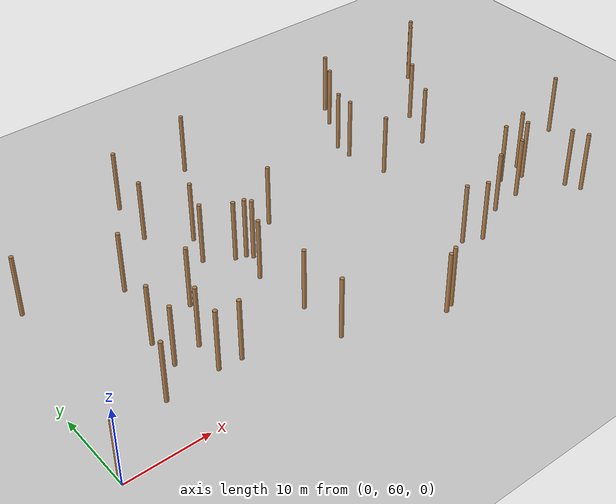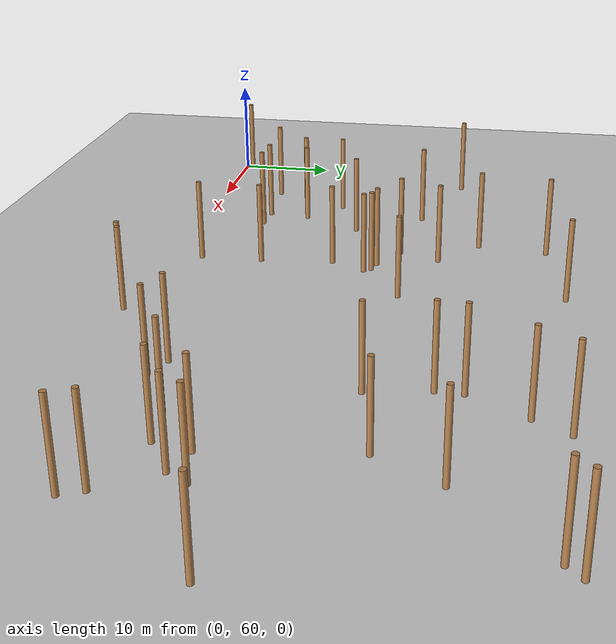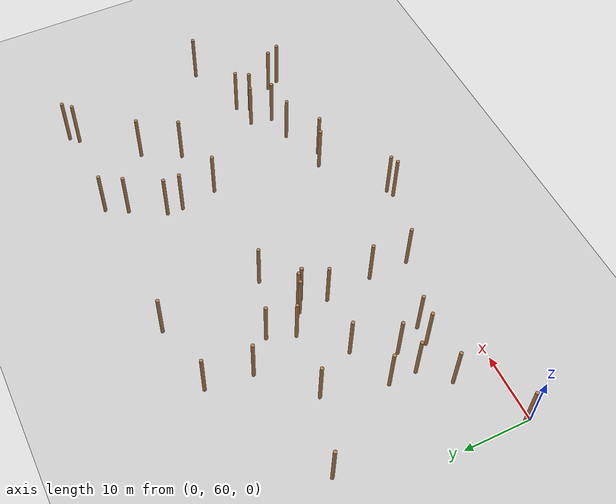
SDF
<sdf version="1.5">
 <world name="padure_tactica">
  <include><uri>model://sun</uri></include>
  <include><uri>model://ground_plane</uri></include>
  <model name="tree_3">
   <static>true</static>
   <pose>61.05 68.27 4.0 0 0 0</pose>
   <link name="link">
    <collision name="collision">
     <geometry><cylinder><radius>0.25</radius><length>8.0</length></cylinder></geometry>
    </collision>
    <visual name="visual">
     <geometry><cylinder><radius>0.25</radius><length>8.0</length></cylinder></geometry>
     <material>
      <script><uri>file://media/materials/scripts/gazebo.material</uri><name>Gazebo/Wood</name></script>
     </material>
    </visual>
   </link>
  </model>
  <model name="tree_17">
   <static>true</static>
   <pose>3.98 86.76 4.0 0 0 0</pose>
   <link name="link">
    <collision name="collision">
     <geometry><cylinder><radius>0.25</radius><length>8.0</length></cylinder></geometry>
    </collision>
    <visual name="visual">
     <geometry><cylinder><radius>0.25</radius><length>8.0</length></cylinder></geometry>
     <material>
      <script><uri>file://media/materials/scripts/gazebo.material</uri><name>Gazebo/Wood</name></script>
     </material>
    </visual>
   </link>
  </model>
  <model name="tree_68">
   <static>true</static>
   <pose>53.68 95.04 4.0 0 0 0</pose>
   <link name="link">
    <collision name="collision">
     <geometry><cylinder><radius>0.25</radius><length>8.0</length></cylinder></geometry>
    </collision>
    <visual name="visual">
     <geometry><cylinder><radius>0.25</radius><length>8.0</length></cylinder></geometry>
     <material>
      <script><uri>file://media/materials/scripts/gazebo.material</uri><name>Gazebo/Wood</name></script>
     </material>
    </visual>
   </link>
  </model>
  <model name="tree_84">
   <static>true</static>
   <pose>70.87 98.27 4.0 0 0 0</pose>
   <link name="link">
    <collision name="collision">
     <geometry><cylinder><radius>0.25</radius><length>8.0</length></cylinder></geometry>
    </collision>
    <visual name="visual">
     <geometry><cylinder><radius>0.25</radius><length>8.0</length></cylinder></geometry>
     <material>
      <script><uri>file://media/materials/scripts/gazebo.material</uri><name>Gazebo/Wood</name></script>
     </material>
    </visual>
   </link>
  </model>
  <model name="tree_122">
   <static>true</static>
   <pose>12.30 74.06 4.0 0 0 0</pose>
   <link name="link">
    <collision name="collision">
     <geometry><cylinder><radius>0.25</radius><length>8.0</length></cylinder></geometry>
    </collision>
    <visual name="visual">
     <geometry><cylinder><radius>0.25</radius><length>8.0</length></cylinder></geometry>
     <material>
      <script><uri>file://media/materials/scripts/gazebo.material</uri><name>Gazebo/Wood</name></script>
     </material>
    </visual>
   </link>
  </model>
  <model name="tree_138">
   <static>true</static>
   <pose>28.56 79.54 4.0 0 0 0</pose>
   <link name="link">
    <collision name="collision">
     <geometry><cylinder><radius>0.25</radius><length>8.0</length></cylinder></geometry>
    </collision>
    <visual name="visual">
     <geometry><cylinder><radius>0.25</radius><length>8.0</length></cylinder></geometry>
     <material>
      <script><uri>file://media/materials/scripts/gazebo.material</uri><name>Gazebo/Wood</name></script>
     </material>
    </visual>
   </link>
  </model>
  <model name="tree_152">
   <static>true</static>
   <pose>50.90 89.97 4.0 0 0 0</pose>
   <link name="link">
    <collision name="collision">
     <geometry><cylinder><radius>0.25</radius><length>8.0</length></cylinder></geometry>
    </collision>
    <visual name="visual">
     <geometry><cylinder><radius>0.25</radius><length>8.0</length></cylinder></geometry>
     <material>
      <script><uri>file://media/materials/scripts/gazebo.material</uri><name>Gazebo/Wood</name></script>
     </material>
    </visual>
   </link>
  </model>
  <model name="tree_161">
   <static>true</static>
   <pose>27.30 79.90 4.0 0 0 0</pose>
   <link name="link">
    <collision name="collision">
     <geometry><cylinder><radius>0.25</radius><length>8.0</length></cylinder></geometry>
    </collision>
    <visual name="visual">
     <geometry><cylinder><radius>0.25</radius><length>8.0</length></cylinder></geometry>
     <material>
      <script><uri>file://media/materials/scripts/gazebo.material</uri><name>Gazebo/Wood</name></script>
     </material>
    </visual>
   </link>
  </model>
  <model name="tree_195">
   <static>true</static>
   <pose>22.06 96.37 4.0 0 0 0</pose>
   <link name="link">
    <collision name="collision">
     <geometry><cylinder><radius>0.25</radius><length>8.0</length></cylinder></geometry>
    </collision>
    <visual name="visual">
     <geometry><cylinder><radius>0.25</radius><length>8.0</length></cylinder></geometry>
     <material>
      <script><uri>file://media/materials/scripts/gazebo.material</uri><name>Gazebo/Wood</name></script>
     </material>
    </visual>
   </link>
  </model>
  <model name="tree_224">
   <static>true</static>
   <pose>67.33 65.92 4.0 0 0 0</pose>
   <link name="link">
    <collision name="collision">
     <geometry><cylinder><radius>0.25</radius><length>8.0</length></cylinder></geometry>
    </collision>
    <visual name="visual">
     <geometry><cylinder><radius>0.25</radius><length>8.0</length></cylinder></geometry>
     <material>
      <script><uri>file://media/materials/scripts/gazebo.material</uri><name>Gazebo/Wood</name></script>
     </material>
    </visual>
   </link>
  </model>
  <model name="tree_226">
   <static>true</static>
   <pose>32.64 98.08 4.0 0 0 0</pose>
   <link name="link">
    <collision name="collision">
     <geometry><cylinder><radius>0.25</radius><length>8.0</length></cylinder></geometry>
    </collision>
    <visual name="visual">
     <geometry><cylinder><radius>0.25</radius><length>8.0</length></cylinder></geometry>
     <material>
      <script><uri>file://media/materials/scripts/gazebo.material</uri><name>Gazebo/Wood</name></script>
     </material>
    </visual>
   </link>
  </model>
  <model name="tree_230">
   <static>true</static>
   <pose>69.76 97.09 4.0 0 0 0</pose>
   <link name="link">
    <collision name="collision">
     <geometry><cylinder><radius>0.25</radius><length>8.0</length></cylinder></geometry>
    </collision>
    <visual name="visual">
     <geometry><cylinder><radius>0.25</radius><length>8.0</length></cylinder></geometry>
     <material>
      <script><uri>file://media/materials/scripts/gazebo.material</uri><name>Gazebo/Wood</name></script>
     </material>
    </visual>
   </link>
  </model>
  <model name="tree_242">
   <static>true</static>
   <pose>49.46 65.78 4.0 0 0 0</pose>
   <link name="link">
    <collision name="collision">
     <geometry><cylinder><radius>0.25</radius><length>8.0</length></cylinder></geometry>
    </collision>
    <visual name="visual">
     <geometry><cylinder><radius>0.25</radius><length>8.0</length></cylinder></geometry>
     <material>
      <script><uri>file://media/materials/scripts/gazebo.material</uri><name>Gazebo/Wood</name></script>
     </material>
    </visual>
   </link>
  </model>
  <model name="tree_286">
   <static>true</static>
   <pose>39.66 58.29 4.0 0 0 0</pose>
   <link name="link">
    <collision name="collision">
     <geometry><cylinder><radius>0.25</radius><length>8.0</length></cylinder></geometry>
    </collision>
    <visual name="visual">
     <geometry><cylinder><radius>0.25</radius><length>8.0</length></cylinder></geometry>
     <material>
      <script><uri>file://media/materials/scripts/gazebo.material</uri><name>Gazebo/Wood</name></script>
     </material>
    </visual>
   </link>
  </model>
  <model name="tree_382">
   <static>true</static>
   <pose>64.44 70.48 4.0 0 0 0</pose>
   <link name="link">
    <collision name="collision">
     <geometry><cylinder><radius>0.25</radius><length>8.0</length></cylinder></geometry>
    </collision>
    <visual name="visual">
     <geometry><cylinder><radius>0.25</radius><length>8.0</length></cylinder></geometry>
     <material>
      <script><uri>file://media/materials/scripts/gazebo.material</uri><name>Gazebo/Wood</name></script>
     </material>
    </visual>
   </link>
  </model>
  <model name="tree_406">
   <static>true</static>
   <pose>28.17 68.47 4.0 0 0 0</pose>
   <link name="link">
    <collision name="collision">
     <geometry><cylinder><radius>0.25</radius><length>8.0</length></cylinder></geometry>
    </collision>
    <visual name="visual">
     <geometry><cylinder><radius>0.25</radius><length>8.0</length></cylinder></geometry>
     <material>
      <script><uri>file://media/materials/scripts/gazebo.material</uri><name>Gazebo/Wood</name></script>
     </material>
    </visual>
   </link>
  </model>
  <model name="tree_424">
   <static>true</static>
   <pose>18.79 76.56 4.0 0 0 0</pose>
   <link name="link">
    <collision name="collision">
     <geometry><cylinder><radius>0.25</radius><length>8.0</length></cylinder></geometry>
    </collision>
    <visual name="visual">
     <geometry><cylinder><radius>0.25</radius><length>8.0</length></cylinder></geometry>
     <material>
      <script><uri>file://media/materials/scripts/gazebo.material</uri><name>Gazebo/Wood</name></script>
     </material>
    </visual>
   </link>
  </model>
  <model name="tree_428">
   <static>true</static>
   <pose>8.98 66.28 4.0 0 0 0</pose>
   <link name="link">
    <collision name="collision">
     <geometry><cylinder><radius>0.25</radius><length>8.0</length></cylinder></geometry>
    </collision>
    <visual name="visual">
     <geometry><cylinder><radius>0.25</radius><length>8.0</length></cylinder></geometry>
     <material>
      <script><uri>file://media/materials/scripts/gazebo.material</uri><name>Gazebo/Wood</name></script>
     </material>
    </visual>
   </link>
  </model>
  <model name="tree_462">
   <static>true</static>
   <pose>12.42 69.99 4.0 0 0 0</pose>
   <link name="link">
    <collision name="collision">
     <geometry><cylinder><radius>0.25</radius><length>8.0</length></cylinder></geometry>
    </collision>
    <visual name="visual">
     <geometry><cylinder><radius>0.25</radius><length>8.0</length></cylinder></geometry>
     <material>
      <script><uri>file://media/materials/scripts/gazebo.material</uri><name>Gazebo/Wood</name></script>
     </material>
    </visual>
   </link>
  </model>
  <model name="tree_488">
   <static>true</static>
   <pose>56.90 67.70 4.0 0 0 0</pose>
   <link name="link">
    <collision name="collision">
     <geometry><cylinder><radius>0.25</radius><length>8.0</length></cylinder></geometry>
    </collision>
    <visual name="visual">
     <geometry><cylinder><radius>0.25</radius><length>8.0</length></cylinder></geometry>
     <material>
      <script><uri>file://media/materials/scripts/gazebo.material</uri><name>Gazebo/Wood</name></script>
     </material>
    </visual>
   </link>
  </model>
  <model name="tree_504">
   <static>true</static>
   <pose>27.48 75.52 4.0 0 0 0</pose>
   <link name="link">
    <collision name="collision">
     <geometry><cylinder><radius>0.25</radius><length>8.0</length></cylinder></geometry>
    </collision>
    <visual name="visual">
     <geometry><cylinder><radius>0.25</radius><length>8.0</length></cylinder></geometry>
     <material>
      <script><uri>file://media/materials/scripts/gazebo.material</uri><name>Gazebo/Wood</name></script>
     </material>
    </visual>
   </link>
  </model>
  <model name="tree_510">
   <static>true</static>
   <pose>25.57 85.80 4.0 0 0 0</pose>
   <link name="link">
    <collision name="collision">
     <geometry><cylinder><radius>0.25</radius><length>8.0</length></cylinder></geometry>
    </collision>
    <visual name="visual">
     <geometry><cylinder><radius>0.25</radius><length>8.0</length></cylinder></geometry>
     <material>
      <script><uri>file://media/materials/scripts/gazebo.material</uri><name>Gazebo/Wood</name></script>
     </material>
    </visual>
   </link>
  </model>
  <model name="tree_570">
   <static>true</static>
   <pose>21.27 89.62 4.0 0 0 0</pose>
   <link name="link">
    <collision name="collision">
     <geometry><cylinder><radius>0.25</radius><length>8.0</length></cylinder></geometry>
    </collision>
    <visual name="visual">
     <geometry><cylinder><radius>0.25</radius><length>8.0</length></cylinder></geometry>
     <material>
      <script><uri>file://media/materials/scripts/gazebo.material</uri><name>Gazebo/Wood</name></script>
     </material>
    </visual>
   </link>
  </model>
  <model name="tree_596">
   <static>true</static>
   <pose>60.12 83.91 4.0 0 0 0</pose>
   <link name="link">
    <collision name="collision">
     <geometry><cylinder><radius>0.25</radius><length>8.0</length></cylinder></geometry>
    </collision>
    <visual name="visual">
     <geometry><cylinder><radius>0.25</radius><length>8.0</length></cylinder></geometry>
     <material>
      <script><uri>file://media/materials/scripts/gazebo.material</uri><name>Gazebo/Wood</name></script>
     </material>
    </visual>
   </link>
  </model>
  <model name="tree_600">
   <static>true</static>
   <pose>15.54 66.61 4.0 0 0 0</pose>
   <link name="link">
    <collision name="collision">
     <geometry><cylinder><radius>0.25</radius><length>8.0</length></cylinder></geometry>
    </collision>
    <visual name="visual">
     <geometry><cylinder><radius>0.25</radius><length>8.0</length></cylinder></geometry>
     <material>
      <script><uri>file://media/materials/scripts/gazebo.material</uri><name>Gazebo/Wood</name></script>
     </material>
    </visual>
   </link>
  </model>
  <model name="tree_633">
   <static>true</static>
   <pose>63.01 89.46 4.0 0 0 0</pose>
   <link name="link">
    <collision name="collision">
     <geometry><cylinder><radius>0.25</radius><length>8.0</length></cylinder></geometry>
    </collision>
    <visual name="visual">
     <geometry><cylinder><radius>0.25</radius><length>8.0</length></cylinder></geometry>
     <material>
      <script><uri>file://media/materials/scripts/gazebo.material</uri><name>Gazebo/Wood</name></script>
     </material>
    </visual>
   </link>
  </model>
  <model name="tree_636">
   <static>true</static>
   <pose>51.79 64.77 4.0 0 0 0</pose>
   <link name="link">
    <collision name="collision">
     <geometry><cylinder><radius>0.25</radius><length>8.0</length></cylinder></geometry>
    </collision>
    <visual name="visual">
     <geometry><cylinder><radius>0.25</radius><length>8.0</length></cylinder></geometry>
     <material>
      <script><uri>file://media/materials/scripts/gazebo.material</uri><name>Gazebo/Wood</name></script>
     </material>
    </visual>
   </link>
  </model>
  <model name="tree_674">
   <static>true</static>
   <pose>65.53 72.30 4.0 0 0 0</pose>
   <link name="link">
    <collision name="collision">
     <geometry><cylinder><radius>0.25</radius><length>8.0</length></cylinder></geometry>
    </collision>
    <visual name="visual">
     <geometry><cylinder><radius>0.25</radius><length>8.0</length></cylinder></geometry>
     <material>
      <script><uri>file://media/materials/scripts/gazebo.material</uri><name>Gazebo/Wood</name></script>
     </material>
    </visual>
   </link>
  </model>
  <model name="tree_707">
   <static>true</static>
   <pose>14.58 83.15 4.0 0 0 0</pose>
   <link name="link">
    <collision name="collision">
     <geometry><cylinder><radius>0.25</radius><length>8.0</length></cylinder></geometry>
    </collision>
    <visual name="visual">
     <geometry><cylinder><radius>0.25</radius><length>8.0</length></cylinder></geometry>
     <material>
      <script><uri>file://media/materials/scripts/gazebo.material</uri><name>Gazebo/Wood</name></script>
     </material>
    </visual>
   </link>
  </model>
  <model name="tree_750">
   <static>true</static>
   <pose>68.13 64.08 4.0 0 0 0</pose>
   <link name="link">
    <collision name="collision">
     <geometry><cylinder><radius>0.25</radius><length>8.0</length></cylinder></geometry>
    </collision>
    <visual name="visual">
     <geometry><cylinder><radius>0.25</radius><length>8.0</length></cylinder></geometry>
     <material>
      <script><uri>file://media/materials/scripts/gazebo.material</uri><name>Gazebo/Wood</name></script>
     </material>
    </visual>
   </link>
  </model>
  <model name="tree_862">
   <static>true</static>
   <pose>18.28 66.39 4.0 0 0 0</pose>
   <link name="link">
    <collision name="collision">
     <geometry><cylinder><radius>0.25</radius><length>8.0</length></cylinder></geometry>
    </collision>
    <visual name="visual">
     <geometry><cylinder><radius>0.25</radius><length>8.0</length></cylinder></geometry>
     <material>
      <script><uri>file://media/materials/scripts/gazebo.material</uri><name>Gazebo/Wood</name></script>
     </material>
    </visual>
   </link>
  </model>
  <model name="tree_870">
   <static>true</static>
   <pose>24.17 81.89 4.0 0 0 0</pose>
   <link name="link">
    <collision name="collision">
     <geometry><cylinder><radius>0.25</radius><length>8.0</length></cylinder></geometry>
    </collision>
    <visual name="visual">
     <geometry><cylinder><radius>0.25</radius><length>8.0</length></cylinder></geometry>
     <material>
      <script><uri>file://media/materials/scripts/gazebo.material</uri><name>Gazebo/Wood</name></script>
     </material>
    </visual>
   </link>
  </model>
  <model name="tree_925">
   <static>true</static>
   <pose>50.82 87.60 4.0 0 0 0</pose>
   <link name="link">
    <collision name="collision">
     <geometry><cylinder><radius>0.25</radius><length>8.0</length></cylinder></geometry>
    </collision>
    <visual name="visual">
     <geometry><cylinder><radius>0.25</radius><length>8.0</length></cylinder></geometry>
     <material>
      <script><uri>file://media/materials/scripts/gazebo.material</uri><name>Gazebo/Wood</name></script>
     </material>
    </visual>
   </link>
  </model>
  <model name="tree_943">
   <static>true</static>
   <pose>51.82 82.09 4.0 0 0 0</pose>
   <link name="link">
    <collision name="collision">
     <geometry><cylinder><radius>0.25</radius><length>8.0</length></cylinder></geometry>
    </collision>
    <visual name="visual">
     <geometry><cylinder><radius>0.25</radius><length>8.0</length></cylinder></geometry>
     <material>
      <script><uri>file://media/materials/scripts/gazebo.material</uri><name>Gazebo/Wood</name></script>
     </material>
    </visual>
   </link>
  </model>
  <model name="tree_952">
   <static>true</static>
   <pose>28.33 62.45 4.0 0 0 0</pose>
   <link name="link">
    <collision name="collision">
     <geometry><cylinder><radius>0.25</radius><length>8.0</length></cylinder></geometry>
    </collision>
    <visual name="visual">
     <geometry><cylinder><radius>0.25</radius><length>8.0</length></cylinder></geometry>
     <material>
      <script><uri>file://media/materials/scripts/gazebo.material</uri><name>Gazebo/Wood</name></script>
     </material>
    </visual>
   </link>
  </model>
  <model name="tree_957">
   <static>true</static>
   <pose>15.96 70.75 4.0 0 0 0</pose>
   <link name="link">
    <collision name="collision">
     <geometry><cylinder><radius>0.25</radius><length>8.0</length></cylinder></geometry>
    </collision>
    <visual name="visual">
     <geometry><cylinder><radius>0.25</radius><length>8.0</length></cylinder></geometry>
     <material>
      <script><uri>file://media/materials/scripts/gazebo.material</uri><name>Gazebo/Wood</name></script>
     </material>
    </visual>
   </link>
  </model>
  <model name="tree_967">
   <static>true</static>
   <pose>29.08 78.86 4.0 0 0 0</pose>
   <link name="link">
    <collision name="collision">
     <geometry><cylinder><radius>0.25</radius><length>8.0</length></cylinder></geometry>
    </collision>
    <visual name="visual">
     <geometry><cylinder><radius>0.25</radius><length>8.0</length></cylinder></geometry>
     <material>
      <script><uri>file://media/materials/scripts/gazebo.material</uri><name>Gazebo/Wood</name></script>
     </material>
    </visual>
   </link>
  </model>
  <model name="tree_997">
   <static>true</static>
   <pose>55.42 98.06 4.0 0 0 0</pose>
   <link name="link">
    <collision name="collision">
     <geometry><cylinder><radius>0.25</radius><length>8.0</length></cylinder></geometry>
    </collision>
    <visual name="visual">
     <geometry><cylinder><radius>0.25</radius><length>8.0</length></cylinder></geometry>
     <material>
      <script><uri>file://media/materials/scripts/gazebo.material</uri><name>Gazebo/Wood</name></script>
     </material>
    </visual>
   </link>
  </model>
  <model name="tree_1023">
   <static>true</static>
   <pose>40.76 58.75 4.0 0 0 0</pose>
   <link name="link">
    <collision name="collision">
     <geometry><cylinder><radius>0.25</radius><length>8.0</length></cylinder></geometry>
    </collision>
    <visual name="visual">
     <geometry><cylinder><radius>0.25</radius><length>8.0</length></cylinder></geometry>
     <material>
      <script><uri>file://media/materials/scripts/gazebo.material</uri><name>Gazebo/Wood</name></script>
     </material>
    </visual>
   </link>
  </model>
  <model name="tree_1097">
   <static>true</static>
   <pose>0.19 60.73 4.0 0 0 0</pose>
   <link name="link">
    <collision name="collision">
     <geometry><cylinder><radius>0.25</radius><length>8.0</length></cylinder></geometry>
    </collision>
    <visual name="visual">
     <geometry><cylinder><radius>0.25</radius><length>8.0</length></cylinder></geometry>
     <material>
      <script><uri>file://media/materials/scripts/gazebo.material</uri><name>Gazebo/Wood</name></script>
     </material>
    </visual>
   </link>
  </model>
  <model name="tree_1124">
   <static>true</static>
   <pose>34.28 82.81 4.0 0 0 0</pose>
   <link name="link">
    <collision name="collision">
     <geometry><cylinder><radius>0.25</radius><length>8.0</length></cylinder></geometry>
    </collision>
    <visual name="visual">
     <geometry><cylinder><radius>0.25</radius><length>8.0</length></cylinder></geometry>
     <material>
      <script><uri>file://media/materials/scripts/gazebo.material</uri><name>Gazebo/Wood</name></script>
     </material>
    </visual>
   </link>
  </model>
  <model name="tree_1130">
   <static>true</static>
   <pose>74.90 75.38 4.0 0 0 0</pose>
   <link name="link">
    <collision name="collision">
     <geometry><cylinder><radius>0.25</radius><length>8.0</length></cylinder></geometry>
    </collision>
    <visual name="visual">
     <geometry><cylinder><radius>0.25</radius><length>8.0</length></cylinder></geometry>
     <material>
      <script><uri>file://media/materials/scripts/gazebo.material</uri><name>Gazebo/Wood</name></script>
     </material>
    </visual>
   </link>
  </model>
  <model name="tree_1131">
   <static>true</static>
   <pose>61.75 71.50 4.0 0 0 0</pose>
   <link name="link">
    <collision name="collision">
     <geometry><cylinder><radius>0.25</radius><length>8.0</length></cylinder></geometry>
    </collision>
    <visual name="visual">
     <geometry><cylinder><radius>0.25</radius><length>8.0</length></cylinder></geometry>
     <material>
      <script><uri>file://media/materials/scripts/gazebo.material</uri><name>Gazebo/Wood</name></script>
     </material>
    </visual>
   </link>
  </model>
 </world>
</sdf>
